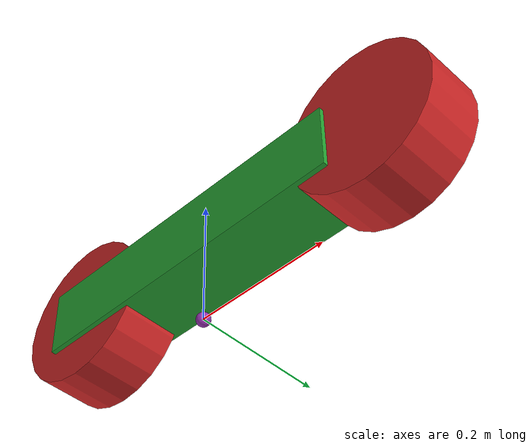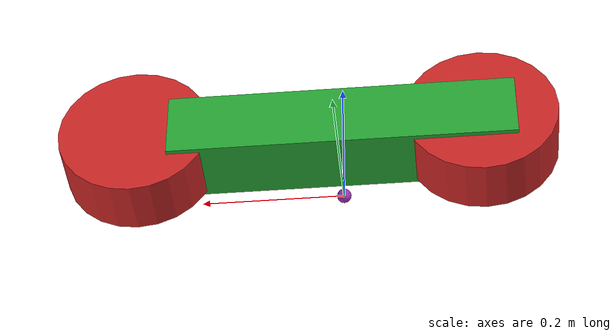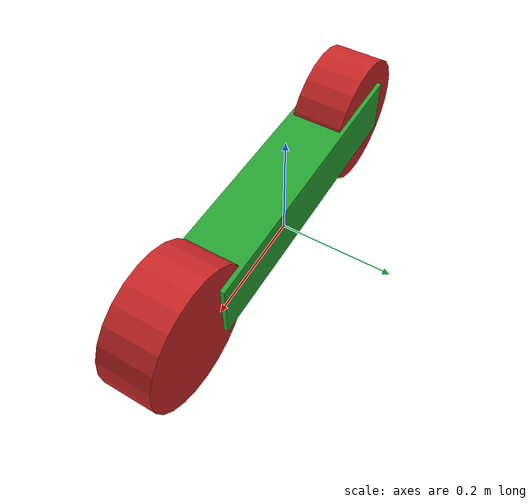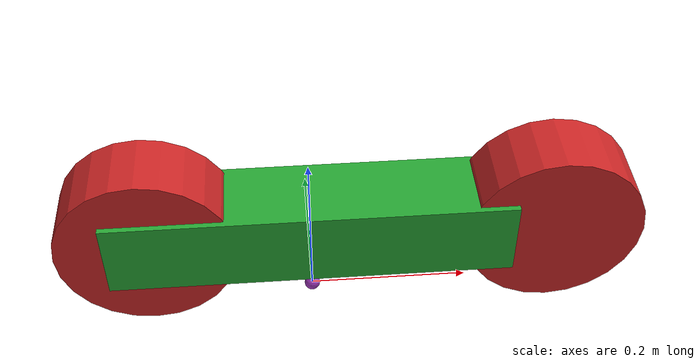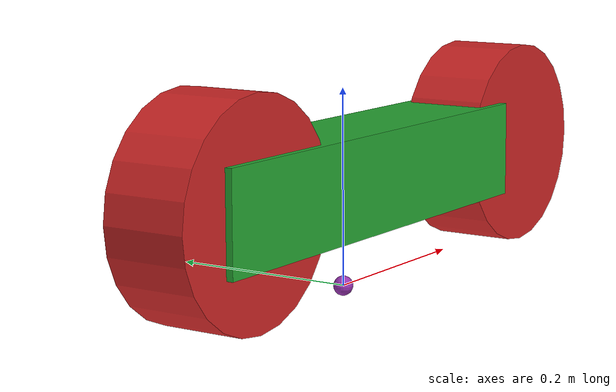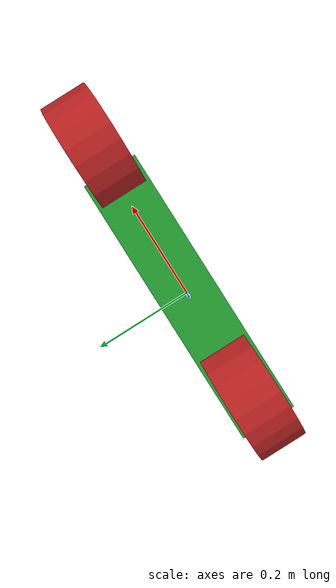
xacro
<?xml version="1.0"?>
<robot name="robot" xmlns:xacro="http://www.ros.org/wiki/xacro">
<!--
Robot model taken from http://wiki.ros.org/pr2_mechanism/Tutorials/SImple%20URDF-Controller%20Example
-->
  <xacro:include filename="$(find rc_car_description)/urdf/wheel.xacro"/>

  <xacro:property name="deg_to_rad" value="0.01745329251994329577"/>

  <!-- Constants for robot dimensions -->
  <xacro:property name="width" value="0.5" /> <!-- Square dimensions (widthxwidth) of beams -->
  <xacro:property name="wheel_radius" value="0.11" /> <!-- Link 1 -->
  <xacro:property name="thickness" value="0.086" /> <!-- Link 2 -->
  <xacro:property name="axel_offset" value="0.05" /> <!-- Space btw top of beam and the each joint -->

  <!-- Links: inertial,visual,collision -->
  <link name="base_link">
    <inertial>
      <!-- origin is relative -->
      <origin xyz="0 0 0" rpy="0 0 0"/>
      <mass value="5"/>
      <inertia ixx="5" ixy="0" ixz="0" iyy="5" iyz="0" izz="5"/>
    </inertial>
    <visual>
      <geometry>
        <box size="${width} 0.1 0.1"/>
      </geometry>
    </visual>
    <collision>
      <!-- origin is relative -->
      <origin xyz="0 0 0"/>
      <geometry>
        <box size="${width} 0.1 0.1"/>
      </geometry>
    </collision>
  </link>

  <link name="base_footprint">
    <visual>
      <geometry>
        <sphere radius="0.01"/>
      </geometry>
    </visual>
    <collision>
      <origin xyz="0 0 0"/>
      <geometry>
        <sphere radius="0.00000001"/>
      </geometry>
    </collision>
  </link>
  <joint name="base_footprint_joint" type="fixed">
    <origin xyz="0 0 ${wheel_radius}" rpy="0 0 0"/>
    <child link="base_link"/>
    <parent link="base_footprint"/>
  </joint>

  <!-- Wheels -->
  <wheel name="wheel_0" parent="base" radius="${wheel_radius}" thickness="${thickness}">
    <origin xyz="${width/2+axel_offset} 0 0" rpy="${-90 * deg_to_rad} 0 0"/>
  </wheel>
  <wheel name="wheel_1" parent="base" radius="${wheel_radius}" thickness="${thickness}">
    <origin xyz="${-width/2+axel_offset} 0 0" rpy="${-90 * deg_to_rad} 0 0"/>
  </wheel>

  <!-- Colour -->
  <gazebo reference="base_link">
    <material>Gazebo/Green</material>
  </gazebo>

  <gazebo reference="base_footprint">
    <material>Gazebo/Purple</material>
  </gazebo>

</robot>

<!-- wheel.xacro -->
<robot xmlns:xacro="http://www.ros.org/wiki/xacro">
  <xacro:macro name="wheel" params="name parent radius thickness *origin">
    <link name="${name}_link">
      <inertial>
        <origin xyz="0 0 0" rpy="0 0 0"/>
        <mass value="1"/>
        <inertia ixx="0.2" ixy="0" ixz="0" iyy="0.2" iyz="0" izz="0.2"/>
      </inertial>
      <visual>
        <origin xyz="0 0 0" rpy="0 0 0"/>
        <geometry>
          <cylinder radius="${wheel_radius}" length="${thickness}"/>
        </geometry>
      </visual>
      <collision>
        <origin xyz="0 0 0" rpy="0 0 0"/>
        <geometry>
          <cylinder radius="${wheel_radius}" length="${thickness}"/>
        </geometry>
      </collision>
    </link>

    <joint name="${name}_joint" type="continuous">
      <parent link="${parent}_link"/>
      <child link="${name}_link"/>
      <xacro:insert_block name="origin"/>
      <axis xyz="0 0 1"/>
    </joint>

    <!-- Transmission is important to link the joints and the controller -->
    <transmission name="${name}_joint_trans" type="SimpleTransmission">
      <actuator name="${name}_joint_motor"/>
      <joint name="${name}_joint"/>
      <mechanicalReduction>1</mechanicalReduction>
      <motorTorqueConstant>1</motorTorqueConstant>
    </transmission>

    <gazebo reference="${name}_link">
      <material>Gazebo/Red</material>
    </gazebo>
  </xacro:macro>
</robot>
